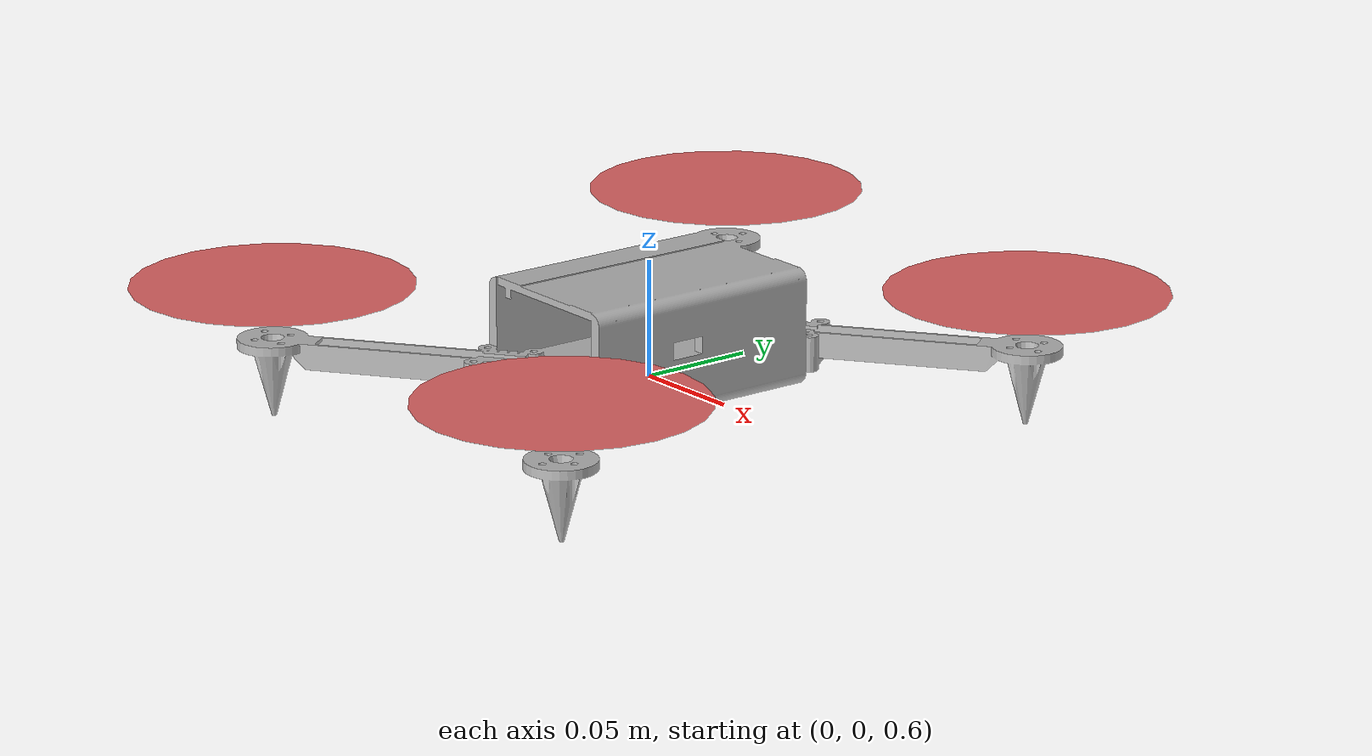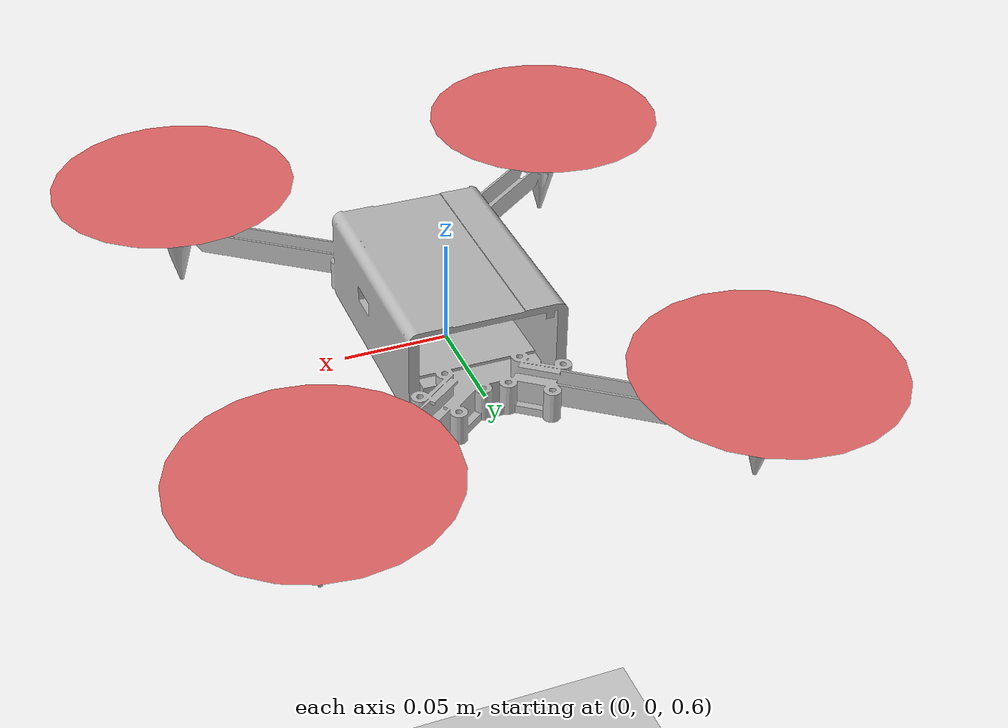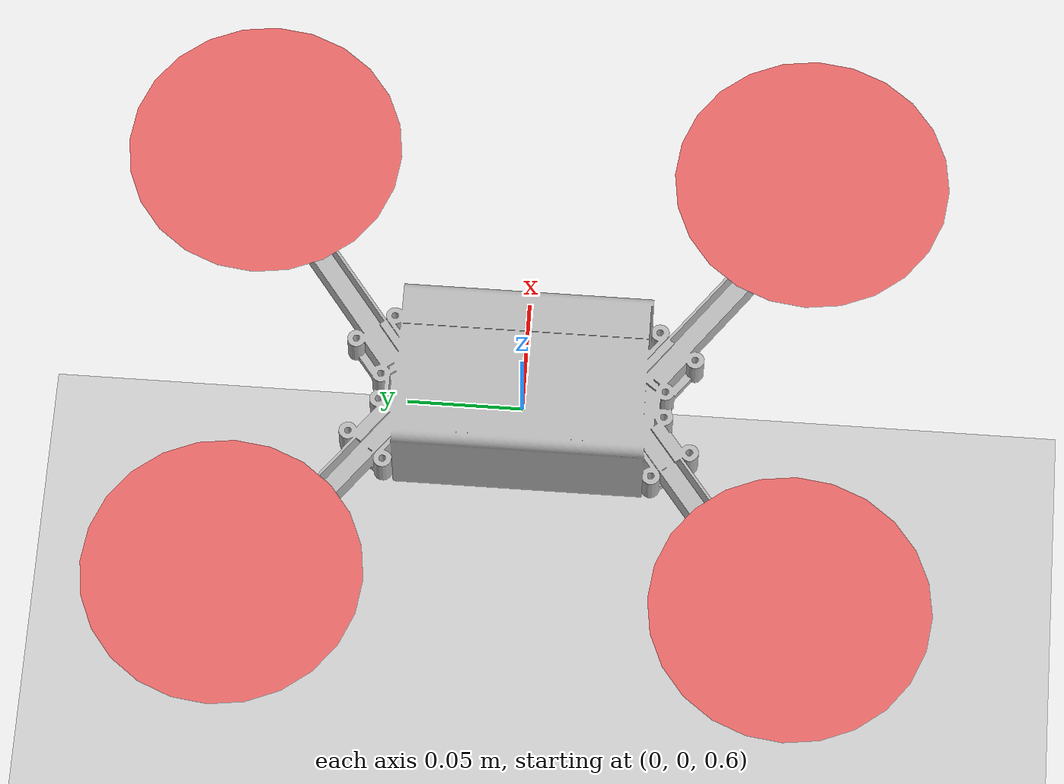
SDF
<?xml version="1.0"?>
<sdf version="1.5">
  <world name="default">

    <!-- Mặt đất -->
    <include>
      <uri>model://ground_plane</uri>
    </include>
    <gui>
      <camera name="user_camera">
        <!-- x y z roll pitch yaw -->
        <pose>-8 0 4 0 0.3 0</pose>
      </camera>
    </gui>
    <!-- Mặt trời -->
    <include>
      <uri>model://sun</uri>
    </include>

    <!-- UAV flix -->
    <include>
      <uri>model://uav</uri>
       <material>
  	<ambient>1 1 1 1</ambient>
  	<diffuse>1 1 1 1</diffuse>
  	<specular>0.4 0.4 0.4 1</specular>
       </material>
      <pose>0 0 0.6 0 0 0</pose>
    </include>

  </world>
</sdf>

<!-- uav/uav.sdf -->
<sdf version="1.5">
  <model name="uav">
    <plugin name="uav_controller" filename="libuav_plugin.so"/>
    <link name="body">
      <inertial>
        <mass>0.06</mass>
        <inertia>
	    <ixx>6.29e-4</ixx>
	    <iyy>6.29e-4</iyy>
	    <izz>8.23e-4</izz>
        </inertia>
      </inertial>
      <velocity_decay>
  	<linear>0.0015</linear>
  	<angular>0.0015</angular>
      </velocity_decay>

      <collision name="collision">
        <geometry>
          <box>
            <size>0.095 0.095 0.0276</size>
          </box>
        </geometry>
      </collision>

      <sensor name="imu" type="imu">
        <always_on>1</always_on>
        <visualize>0</visualize>
        <update_rate>1000</update_rate>
        <imu>
          <angular_velocity>
            <x><noise type="gaussian"><stddev>0.1</stddev></noise></x>
            <y><noise type="gaussian"><stddev>0.2</stddev></noise></y>
            <z><noise type="gaussian"><stddev>0.2</stddev></noise></z>
          </angular_velocity>
          <linear_acceleration>
            <x><noise type="gaussian"><stddev>0.2</stddev></noise></x>
            <y><noise type="gaussian"><stddev>0.2</stddev></noise></y>
            <z><noise type="gaussian"><stddev>0.2</stddev></noise></z>
          </linear_acceleration>
        </imu>
      </sensor>

      <visual name="body">
        <geometry>
          <mesh>
            <uri>model://uav/uav.stl</uri>
            <scale>0.001 0.001 0.001</scale>
              <material>
  		<ambient>1 1 1 1</ambient>
  		<diffuse>1 1 1 1</diffuse>
  		<specular>0.4 0.4 0.4 1</specular>
	    </material>
          </mesh>
        </geometry>
      </visual>
      <visual name="prop0"><!-- rear left -->
        <geometry><cylinder><radius>0.06</radius><length>0</length></cylinder></geometry>
        <pose>-0.1  0.12 0.038 0 0 0</pose>
        <material><ambient>0.6 0.2 0.2 1.0</ambient><diffuse>0.9 0.4 0.4 1.0</diffuse></material>
      </visual>

      <visual name="prop1"><!-- rear right -->
        <geometry><cylinder><radius>0.06</radius><length>0</length></cylinder></geometry>
        <pose>-0.1 -0.12 0.038 0 0 0</pose>
        <material><ambient>0.6 0.2 0.2 1.0</ambient><diffuse>0.9 0.4 0.4 1.0</diffuse></material>
      </visual>

      <visual name="prop2"><!-- front right -->
        <geometry><cylinder><radius>0.06</radius><length>0</length></cylinder></geometry>
        <pose> 0.1 -0.12 0.038 0 0 0</pose>
        <material><ambient>0.6 0.2 0.2 1.0</ambient><diffuse>0.9 0.4 0.4 1.0</diffuse></material>
      </visual>

      <visual name="prop3"><!-- front left -->
        <geometry><cylinder><radius>0.06</radius><length>0</length></cylinder></geometry>
        <pose> 0.1  0.12 0.038 0 0 0</pose>
        <material><ambient>0.6 0.2 0.2 1.0</ambient><diffuse>0.9 0.4 0.4 1.0</diffuse></material>
      </visual>

    </link>
  </model>
</sdf>
